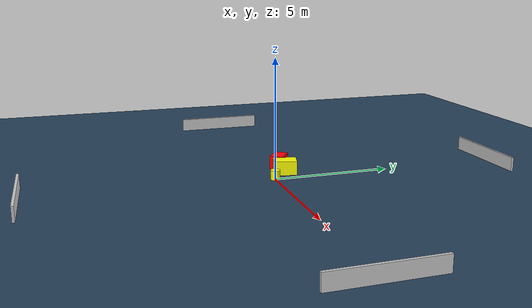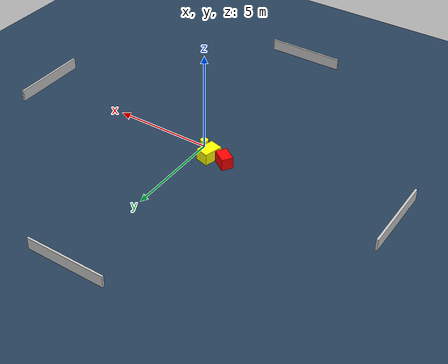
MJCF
<?xml version="1.0" ?>
<mujoco model="generated_environment">
  <option timestep="0.01" integrator="RK4" cone="elliptic"/>
  <default>
    <geom density="1"/>
  </default>
  <asset>
    <texture builtin="gradient" height="3072" name="skybox" rgb1="0.3 0.5 0.7" rgb2="0 0 0" type="skybox" width="512"/>
    <texture builtin="checker" height="300" name="groundplane" rgb1="0.2 0.3 0.4" rgb2="0.1 0.2 0.3" type="2d" width="300"/>
    <material name="groundplane" reflectance="0.2" texrepeat="5 5" texture="groundplane"/>
  </asset>
  <worldbody>
    <light dir="0 0 -1" directional="true" pos="0 0 1.5"/>
    <geom condim="3" friction="0.5 0.005 0.001" material="groundplane" name="floor" pos="0 0 0" size="0 0 0.05" type="plane"/>
    <body name="walls">
      <geom name="wall_1" condim="4" pos="-10.0 0.0 0.3" rgba="0.800000011920929 0.800000011920929 0.800000011920929 1.0" size="0.05 2.0 0.3" type="box"/>
      <geom name="wall_2" condim="4" pos="10.0 0.0 0.3" rgba="0.800000011920929 0.800000011920929 0.800000011920929 1.0" size="0.05 2.0 0.3" type="box"/>
      <geom name="wall_3" condim="4" pos="0.0 -10.0 0.3" rgba="0.800000011920929 0.800000011920929 0.800000011920929 1.0" size="2.0 0.05 0.3" type="box"/>
      <geom name="wall_4" condim="4" pos="0.0 10.0 0.3" rgba="0.800000011920929 0.800000011920929 0.800000011920929 1.0" size="2.0 0.05 0.3" type="box"/>
    </body>
    <body name="robot">
      <joint name="joint_x" type="slide" pos="0 0 0" axis="1 0 0"/>
      <joint name="joint_y" type="slide" pos="0 0 0" axis="0 1 0"/>
      <geom name="robot" type="cylinder" pos="0.0 0.0 0.2" size="0.2 0.2 0.0" mass="5.0" friction="1.0 0.005 0.0001" condim="4" rgba="1.0 1.0 0.0 1.0"/>
    </body>
    <body name="obstacle_1_movable">
      <geom name="obstacle_1_movable" condim="4" pos="-0.7162810290706125 0.6561629021293182 0.3" euler="0 0 255.91264034617797" friction="0.0 0.005 0.001" rgba="1.0 1.0 0.0 1.0" size="0.48678731055822605 0.3376752855461065 0.3" type="box" mass="0.1"/>
      <joint type="free"/>
    </body>
    <body name="obstacle_2_static">
      <geom name="obstacle_2_static" condim="4" pos="-1.580346402689288 0.6689378861424017 0.3" euler="0 0 325.337800845273" friction="0.0 0.005 0.001" rgba="1.0 0.0 0.0 1.0" size="0.40053116871818073 0.28582927468297903 0.3" type="box"/>
    </body>
  </worldbody>
  <actuator>
    <motor name="actuator_x" joint="joint_x" gear="1" ctrlrange="-1 1"/>
    <motor name="actuator_y" joint="joint_y" gear="1" ctrlrange="-1 1"/>
  </actuator>
</mujoco>
